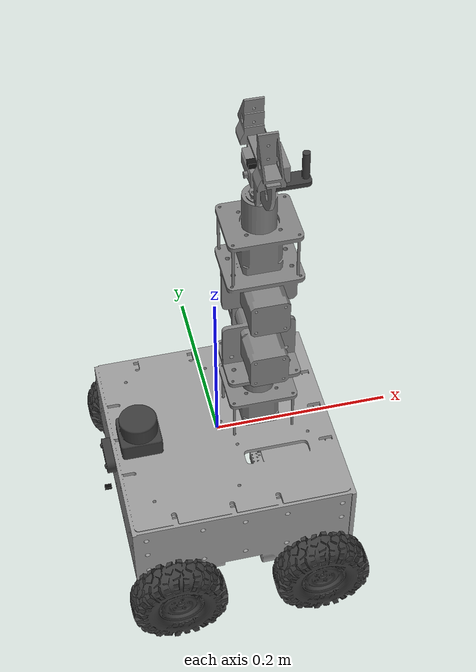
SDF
<sdf version="1.7">
  <model name="mobile_arm_robot">
    <link name="base_link">
      <inertial>
        <pose>0.014618 0.005486 0.023313 0 -0 0</pose>
        <mass>2.66836</mass>
        <inertia>
          <ixx>0.0420107</ixx>
          <ixy>-0.000458565</ixy>
          <ixz>-0.00621837</ixz>
          <iyy>0.0433674</iyy>
          <iyz>-0.00205126</iyz>
          <izz>0.0107035</izz>
        </inertia>
      </inertial>
      <collision name="base_link_collision">
        <pose>0 0 0 0 -0 0</pose>
        <geometry>
          <mesh>
            <scale>1 1 1</scale>
            <uri>file:///home/kamel/ros2_ws3_1/src/mobile_arm_robot_description/meshes/base_link.STL</uri>
          </mesh>
        </geometry>
      </collision>
      <collision name="base_link_fixed_joint_lump__arm_base_link_collision_1">
        <pose>0.050712 0.014708 0.002 0 -0 0</pose>
        <geometry>
          <mesh>
            <scale>1 1 1</scale>
            <uri>file:///home/kamel/ros2_ws3_1/src/mobile_arm_robot_description/meshes/arm_base_link.STL</uri>
          </mesh>
        </geometry>
      </collision>
      <collision name="base_link_fixed_joint_lump__arm_link_1_collision_2">
        <pose>0.050712 0.014708 0.091 0 -0 3.14159</pose>
        <geometry>
          <mesh>
            <scale>1 1 1</scale>
            <uri>file:///home/kamel/ros2_ws3_1/src/mobile_arm_robot_description/meshes/arm_link_1.STL</uri>
          </mesh>
        </geometry>
      </collision>
      <collision name="base_link_fixed_joint_lump__arm_link_2_collision_3">
        <pose>0.050712 0.050458 0.127193 0 -0 3.14159</pose>
        <geometry>
          <mesh>
            <scale>1 1 1</scale>
            <uri>file:///home/kamel/ros2_ws3_1/src/mobile_arm_robot_description/meshes/arm_link_2.STL</uri>
          </mesh>
        </geometry>
      </collision>
      <collision name="base_link_fixed_joint_lump__arm_link_3_collision_4">
        <pose>0.050712 0.050458 0.206517 0 -0 3.14159</pose>
        <geometry>
          <mesh>
            <scale>1 1 1</scale>
            <uri>file:///home/kamel/ros2_ws3_1/src/mobile_arm_robot_description/meshes/arm_link_3.STL</uri>
          </mesh>
        </geometry>
      </collision>
      <collision name="base_link_fixed_joint_lump__arm_link_4_collision_5">
        <pose>0.050712 0.014808 0.332717 0 -0 3.14159</pose>
        <geometry>
          <mesh>
            <scale>1 1 1</scale>
            <uri>file:///home/kamel/ros2_ws3_1/src/mobile_arm_robot_description/meshes/arm_link_4.STL</uri>
          </mesh>
        </geometry>
      </collision>
      <collision name="base_link_fixed_joint_lump__arm_camera_link_collision_6">
        <pose>0.097212 0.014808 0.375217 0 0 -0</pose>
        <geometry>
          <mesh>
            <scale>1 1 1</scale>
            <uri>file:///home/kamel/ros2_ws3_1/src/mobile_arm_robot_description/meshes/arm_camera_link.STL</uri>
          </mesh>
        </geometry>
      </collision>
      <collision name="base_link_fixed_joint_lump__left_gripper_link_collision_7">
        <pose>0.051212 0.039808 0.407717 0 -0 3.14159</pose>
        <geometry>
          <mesh>
            <scale>1 1 1</scale>
            <uri>file:///home/kamel/ros2_ws3_1/src/mobile_arm_robot_description/meshes/left_gripper_link.STL</uri>
          </mesh>
        </geometry>
      </collision>
      <collision name="base_link_fixed_joint_lump__right_gripper_link_collision_8">
        <pose>0.051212 -0.010192 0.407717 0 -0 3.14159</pose>
        <geometry>
          <mesh>
            <scale>1 1 1</scale>
            <uri>file:///home/kamel/ros2_ws3_1/src/mobile_arm_robot_description/meshes/right_gripper_link.STL</uri>
          </mesh>
        </geometry>
      </collision>
      <collision name="base_link_fixed_joint_lump__lidar_link_collision_9">
        <pose>-0.090862 0.001797 0.04 0 -0 0</pose>
        <geometry>
          <mesh>
            <scale>1 1 1</scale>
            <uri>file:///home/kamel/ros2_ws3_1/src/mobile_arm_robot_description/meshes/lidar_link.STL</uri>
          </mesh>
        </geometry>
      </collision>
      <collision name="base_link_fixed_joint_lump__robot_camera_link_collision_10">
        <pose>-0.133238 0.001833 -0.016013 0 -0 0</pose>
        <geometry>
          <mesh>
            <scale>1 1 1</scale>
            <uri>file:///home/kamel/ros2_ws3_1/src/mobile_arm_robot_description/meshes/robot_camera_link.STL</uri>
          </mesh>
        </geometry>
      </collision>
      <visual name="base_link_visual">
        <pose>0 0 0 0 -0 0</pose>
        <geometry>
          <mesh>
            <scale>1 1 1</scale>
            <uri>file:///home/kamel/ros2_ws3_1/src/mobile_arm_robot_description/meshes/base_link.STL</uri>
          </mesh>
        </geometry>
        <material>
          <ambient>0.6 0.6 0.6 1</ambient>
          <diffuse>0.6 0.6 0.6 1</diffuse>
          <specular>0.1 0.1 0.1 1</specular>
        </material>
      </visual>
      <visual name="base_link_fixed_joint_lump__arm_base_link_visual_1">
        <pose>0.050712 0.014708 0.002 0 -0 0</pose>
        <geometry>
          <mesh>
            <scale>1 1 1</scale>
            <uri>file:///home/kamel/ros2_ws3_1/src/mobile_arm_robot_description/meshes/arm_base_link.STL</uri>
          </mesh>
        </geometry>
        <material>
          <ambient>0.502 0.502 0.502 1</ambient>
          <diffuse>0.502 0.502 0.502 1</diffuse>
          <specular>0.1 0.1 0.1 1</specular>
        </material>
      </visual>
      <visual name="base_link_fixed_joint_lump__arm_link_1_visual_2">
        <pose>0.050712 0.014708 0.091 0 -0 3.14159</pose>
        <geometry>
          <mesh>
            <scale>1 1 1</scale>
            <uri>file:///home/kamel/ros2_ws3_1/src/mobile_arm_robot_description/meshes/arm_link_1.STL</uri>
          </mesh>
        </geometry>
        <material>
          <ambient>0.502 0.502 0.502 1</ambient>
          <diffuse>0.502 0.502 0.502 1</diffuse>
          <specular>0.1 0.1 0.1 1</specular>
        </material>
      </visual>
      <visual name="base_link_fixed_joint_lump__arm_link_2_visual_3">
        <pose>0.050712 0.050458 0.127193 0 -0 3.14159</pose>
        <geometry>
          <mesh>
            <scale>1 1 1</scale>
            <uri>file:///home/kamel/ros2_ws3_1/src/mobile_arm_robot_description/meshes/arm_link_2.STL</uri>
          </mesh>
        </geometry>
        <material>
          <ambient>0.502 0.502 0.502 1</ambient>
          <diffuse>0.502 0.502 0.502 1</diffuse>
          <specular>0.1 0.1 0.1 1</specular>
        </material>
      </visual>
      <visual name="base_link_fixed_joint_lump__arm_link_3_visual_4">
        <pose>0.050712 0.050458 0.206517 0 -0 3.14159</pose>
        <geometry>
          <mesh>
            <scale>1 1 1</scale>
            <uri>file:///home/kamel/ros2_ws3_1/src/mobile_arm_robot_description/meshes/arm_link_3.STL</uri>
          </mesh>
        </geometry>
        <material>
          <ambient>0.502 0.502 0.502 1</ambient>
          <diffuse>0.502 0.502 0.502 1</diffuse>
          <specular>0.1 0.1 0.1 1</specular>
        </material>
      </visual>
      <visual name="base_link_fixed_joint_lump__arm_link_4_visual_5">
        <pose>0.050712 0.014808 0.332717 0 -0 3.14159</pose>
        <geometry>
          <mesh>
            <scale>1 1 1</scale>
            <uri>file:///home/kamel/ros2_ws3_1/src/mobile_arm_robot_description/meshes/arm_link_4.STL</uri>
          </mesh>
        </geometry>
        <material>
          <ambient>0.502 0.502 0.502 1</ambient>
          <diffuse>0.502 0.502 0.502 1</diffuse>
          <specular>0.1 0.1 0.1 1</specular>
        </material>
      </visual>
      <visual name="base_link_fixed_joint_lump__arm_camera_link_visual_6">
        <pose>0.097212 0.014808 0.375217 0 0 -0</pose>
        <geometry>
          <mesh>
            <scale>1 1 1</scale>
            <uri>file:///home/kamel/ros2_ws3_1/src/mobile_arm_robot_description/meshes/arm_camera_link.STL</uri>
          </mesh>
        </geometry>
        <material>
          <ambient>0.231 0.231 0.231 1</ambient>
          <diffuse>0.231 0.231 0.231 1</diffuse>
          <specular>0.1 0.1 0.1 1</specular>
        </material>
      </visual>
      <visual name="base_link_fixed_joint_lump__left_gripper_link_visual_7">
        <pose>0.051212 0.039808 0.407717 0 -0 3.14159</pose>
        <geometry>
          <mesh>
            <scale>1 1 1</scale>
            <uri>file:///home/kamel/ros2_ws3_1/src/mobile_arm_robot_description/meshes/left_gripper_link.STL</uri>
          </mesh>
        </geometry>
        <material>
          <ambient>0.502 0.502 0.502 1</ambient>
          <diffuse>0.502 0.502 0.502 1</diffuse>
          <specular>0.1 0.1 0.1 1</specular>
        </material>
      </visual>
      <visual name="base_link_fixed_joint_lump__right_gripper_link_visual_8">
        <pose>0.051212 -0.010192 0.407717 0 -0 3.14159</pose>
        <geometry>
          <mesh>
            <scale>1 1 1</scale>
            <uri>file:///home/kamel/ros2_ws3_1/src/mobile_arm_robot_description/meshes/right_gripper_link.STL</uri>
          </mesh>
        </geometry>
        <material>
          <ambient>0.502 0.502 0.502 1</ambient>
          <diffuse>0.502 0.502 0.502 1</diffuse>
          <specular>0.1 0.1 0.1 1</specular>
        </material>
      </visual>
      <visual name="base_link_fixed_joint_lump__lidar_link_visual_9">
        <pose>-0.090862 0.001797 0.04 0 -0 0</pose>
        <geometry>
          <mesh>
            <scale>1 1 1</scale>
            <uri>file:///home/kamel/ros2_ws3_1/src/mobile_arm_robot_description/meshes/lidar_link.STL</uri>
          </mesh>
        </geometry>
        <material>
          <ambient>0.231 0.231 0.231 1</ambient>
          <diffuse>0.231 0.231 0.231 1</diffuse>
          <specular>0.1 0.1 0.1 1</specular>
        </material>
      </visual>
      <visual name="base_link_fixed_joint_lump__robot_camera_link_visual_10">
        <pose>-0.133238 0.001833 -0.016013 0 -0 0</pose>
        <geometry>
          <mesh>
            <scale>1 1 1</scale>
            <uri>file:///home/kamel/ros2_ws3_1/src/mobile_arm_robot_description/meshes/robot_camera_link.STL</uri>
          </mesh>
        </geometry>
        <material>
          <ambient>0.231 0.231 0.231 1</ambient>
          <diffuse>0.231 0.231 0.231 1</diffuse>
          <specular>0.1 0.1 0.1 1</specular>
        </material>
      </visual>

      <!-- Small distance sensor mounted near the top of the fixed arm -->
      <visual name="arm_front_distance_sensor_visual">
        <pose>0.045 0.014808 0.372 0 0 3.14159</pose>

        <geometry>
          <box>
            <size>0.014 0.008 0.006</size>
          </box>
        </geometry>

        <material>
          <ambient>0.05 0.05 0.05 1</ambient>
          <diffuse>0.08 0.08 0.08 1</diffuse>
          <specular>0.02 0.02 0.02 1</specular>
        </material>
      </visual>

      <!-- Narrow ray sensor: behaves like a small ToF / proximity sensor -->
      <sensor name="arm_front_distance_sensor" type="gpu_lidar">
        <pose>0.045 0.014808 0.372 0 0 3.14159</pose>

        <always_on>true</always_on>
        <visualize>true</visualize>
        <update_rate>15</update_rate>

        <topic>/arm_front_lidar</topic>

        <ray>
          <scan>
            <horizontal>
              <samples>181</samples>
              <resolution>1</resolution>

              <!-- About 14 degrees total field of view -->
              <min_angle>-1.5708</min_angle>
              <max_angle>1.5708</max_angle>
            </horizontal>
          </scan>

          <range>
            <min>0.05</min>
            <max>2.00</max>
            <resolution>0.005</resolution>
          </range>

          <noise>
            <type>gaussian</type>
            <mean>0.0</mean>
            <stddev>0.002</stddev>
          </noise>
        </ray>
      </sensor>

      <!-- Tiny lower front sensor, mounted under the robot camera -->
            <!-- Small visible mount connecting the lower sensor to the robot body -->

<visual name="lower_front_distance_sensor_visual">
        <!-- Same X/Y as robot camera, but lower -->
        <pose>-0.133238 0.001833 -0.075 0 0 3.14159</pose>

        <geometry>
          <box>
            <!-- 8 x 6 x 3 mm -->
            <size>0.008 0.006 0.003</size>
          </box>
        </geometry>

        <material>
          <ambient>0.02 0.02 0.02 1</ambient>
          <diffuse>0.03 0.03 0.03 1</diffuse>
          <specular>0.01 0.01 0.01 1</specular>
        </material>
      </visual>

      <!-- Low obstacle detector -->
      <sensor name="lower_front_distance_sensor" type="gpu_lidar">
        <!-- yaw=pi: look toward the real robot front, negative X -->
        <pose>-0.133238 0.001833 -0.075 0 0 3.14159</pose>

        <always_on>true</always_on>
        <visualize>false</visualize>
        <update_rate>20</update_rate>

        <topic>/lower_front_lidar</topic>

        <ray>
          <scan>
            <horizontal>
              <samples>121</samples>
              <resolution>1</resolution>

              <!-- 120 degree field of view -->
              <min_angle>-1.0472</min_angle>
              <max_angle>1.0472</max_angle>
            </horizontal>
          </scan>

          <range>
            <min>0.04</min>
            <max>1.50</max>
            <resolution>0.005</resolution>
          </range>

          <noise>
            <type>gaussian</type>
            <mean>0.0</mean>
            <stddev>0.002</stddev>
          </noise>
        </ray>
      </sensor>

      <sensor name="lidar_sensor" type="gpu_lidar">
        <pose>-0.0908615203408174 0.00179684818200293 0.04 0 0 0</pose>
        <always_on>true</always_on>
        <visualize>false</visualize>
        <update_rate>10</update_rate>
        <topic>/lidar</topic>
        <ray>
          <scan>
            <horizontal>
              <samples>360</samples>
              <resolution>1</resolution>
              <min_angle>-3.14159</min_angle>
              <max_angle>3.14159</max_angle>
            </horizontal>
          </scan>
          <range>
            <min>0.20</min>
            <max>8.0</max>
            <resolution>0.01</resolution>
          </range>
          <noise>
            <type>gaussian</type>
            <mean>0.0</mean>
            <stddev>0.01</stddev>
          </noise>
        </ray>
      </sensor>

      <sensor name="robot_camera_sensor" type="camera">
        <pose>-0.133237695032014 0.00183257540465381 -0.0160127626540696 0 0 3.14159</pose>
        <always_on>true</always_on>
        <visualize>false</visualize>
        <update_rate>30</update_rate>
        <topic>/robot_camera/image</topic>
        <camera>
          <horizontal_fov>1.047</horizontal_fov>
          <image>
            <width>640</width>
            <height>480</height>
            <format>R8G8B8</format>
          </image>
          <clip>
            <near>0.05</near>
            <far>20.0</far>
          </clip>
        </camera>
      </sensor>

</link>
    <joint name="front_left_wheel_joint" type="revolute">
      <pose relative_to="base_link">0.086714 0.15998 -0.1041 0 -0 0</pose>
      <parent>base_link</parent>
      <child>front_left_wheel_link</child>
      <axis>
        <xyz>0 1 0</xyz>
        <limit>
          <lower>-1e+16</lower>
          <upper>1e+16</upper>
        </limit>
        <dynamics>
          <spring_reference>0</spring_reference>
          <spring_stiffness>0</spring_stiffness>
        </dynamics>
      </axis>
    </joint>
    <link name="front_left_wheel_link">
      <pose relative_to="front_left_wheel_joint">0 0 0 0 -0 0</pose>
      <inertial>
        <pose>0 -0.007684 -6.1e-05 0 -0 0</pose>
        <mass>0.0711334</mass>
        <inertia>
          <ixx>7.86302e-05</ixx>
          <ixy>1.55295e-09</ixy>
          <ixz>7.11242e-10</ixz>
          <iyy>0.000137459</iyy>
          <iyz>6.83774e-10</iyz>
          <izz>7.84461e-05</izz>
        </inertia>
      </inertial>
      <collision name="front_left_wheel_link_collision">
        <pose>0 0 0 0 -0 0</pose>
        <geometry>
          <mesh>
            <scale>1 1 1</scale>
            <uri>file:///home/kamel/ros2_ws3_1/src/mobile_arm_robot_description/meshes/front_left_wheel_link.STL</uri>
          </mesh>
        </geometry>
      </collision>
      <visual name="front_left_wheel_link_visual">
        <pose>0 0 0 0 -0 0</pose>
        <geometry>
          <mesh>
            <scale>1 1 1</scale>
            <uri>file:///home/kamel/ros2_ws3_1/src/mobile_arm_robot_description/meshes/front_left_wheel_link.STL</uri>
          </mesh>
        </geometry>
        <material>
          <ambient>0.231 0.231 0.231 1</ambient>
          <diffuse>0.231 0.231 0.231 1</diffuse>
          <specular>0.1 0.1 0.1 1</specular>
        </material>
      </visual>
    </link>
    <joint name="front_right_wheel_joint" type="revolute">
      <pose relative_to="base_link">0.086714 -0.15822 -0.1061 0 -0 0</pose>
      <parent>base_link</parent>
      <child>front_right_wheel_link</child>
      <axis>
        <xyz>0 1 0</xyz>
        <limit>
          <lower>-1e+16</lower>
          <upper>1e+16</upper>
        </limit>
        <dynamics>
          <spring_reference>0</spring_reference>
          <spring_stiffness>0</spring_stiffness>
        </dynamics>
      </axis>
    </joint>
    <link name="front_right_wheel_link">
      <pose relative_to="front_right_wheel_joint">0 0 0 0 -0 0</pose>
      <inertial>
        <pose>-0 0.007684 -6.1e-05 0 -0 0</pose>
        <mass>0.0711334</mass>
        <inertia>
          <ixx>7.86302e-05</ixx>
          <ixy>1.55276e-09</ixy>
          <ixz>-7.08139e-10</ixz>
          <iyy>0.000137459</iyy>
          <iyz>-6.77565e-10</iyz>
          <izz>7.84461e-05</izz>
        </inertia>
      </inertial>
      <collision name="front_right_wheel_link_collision">
        <pose>0 0 0 0 -0 0</pose>
        <geometry>
          <mesh>
            <scale>1 1 1</scale>
            <uri>file:///home/kamel/ros2_ws3_1/src/mobile_arm_robot_description/meshes/front_right_wheel_link.STL</uri>
          </mesh>
        </geometry>
      </collision>
      <visual name="front_right_wheel_link_visual">
        <pose>0 0 0 0 -0 0</pose>
        <geometry>
          <mesh>
            <scale>1 1 1</scale>
            <uri>file:///home/kamel/ros2_ws3_1/src/mobile_arm_robot_description/meshes/front_right_wheel_link.STL</uri>
          </mesh>
        </geometry>
        <material>
          <ambient>0.231 0.231 0.231 1</ambient>
          <diffuse>0.231 0.231 0.231 1</diffuse>
          <specular>0.1 0.1 0.1 1</specular>
        </material>
      </visual>
    </link>
    <joint name="rear_left_wheel_joint" type="revolute">
      <pose relative_to="base_link">-0.07999 0.15998 -0.1061 0 -0 0</pose>
      <parent>base_link</parent>
      <child>rear_left_wheel_link</child>
      <axis>
        <xyz>0 1 0</xyz>
        <limit>
          <lower>-1e+16</lower>
          <upper>1e+16</upper>
        </limit>
        <dynamics>
          <spring_reference>0</spring_reference>
          <spring_stiffness>0</spring_stiffness>
        </dynamics>
      </axis>
    </joint>
    <link name="rear_left_wheel_link">
      <pose relative_to="rear_left_wheel_joint">0 0 0 0 -0 0</pose>
      <inertial>
        <pose>0 -0.007684 -6.1e-05 0 -0 0</pose>
        <mass>0.0711334</mass>
        <inertia>
          <ixx>7.86302e-05</ixx>
          <ixy>1.55315e-09</ixy>
          <ixz>7.09428e-10</ixz>
          <iyy>0.000137459</iyy>
          <iyz>6.83448e-10</iyz>
          <izz>7.84461e-05</izz>
        </inertia>
      </inertial>
      <collision name="rear_left_wheel_link_collision">
        <pose>0 0 0 0 -0 0</pose>
        <geometry>
          <mesh>
            <scale>1 1 1</scale>
            <uri>file:///home/kamel/ros2_ws3_1/src/mobile_arm_robot_description/meshes/rear_left_wheel_link.STL</uri>
          </mesh>
        </geometry>
      </collision>
      <visual name="rear_left_wheel_link_visual">
        <pose>0 0 0 0 -0 0</pose>
        <geometry>
          <mesh>
            <scale>1 1 1</scale>
            <uri>file:///home/kamel/ros2_ws3_1/src/mobile_arm_robot_description/meshes/rear_left_wheel_link.STL</uri>
          </mesh>
        </geometry>
        <material>
          <ambient>0.231 0.231 0.231 1</ambient>
          <diffuse>0.231 0.231 0.231 1</diffuse>
          <specular>0.1 0.1 0.1 1</specular>
        </material>
      </visual>
    </link>
    <joint name="rear_right_wheel_joint" type="revolute">
      <pose relative_to="base_link">-0.07999 -0.15822 -0.1041 0 -0 0</pose>
      <parent>base_link</parent>
      <child>rear_right_wheel_link</child>
      <axis>
        <xyz>0 1 0</xyz>
        <limit>
          <lower>-1e+16</lower>
          <upper>1e+16</upper>
        </limit>
        <dynamics>
          <spring_reference>0</spring_reference>
          <spring_stiffness>0</spring_stiffness>
        </dynamics>
      </axis>
    </joint>
    <link name="rear_right_wheel_link">
      <pose relative_to="rear_right_wheel_joint">0 0 0 0 -0 0</pose>
      <inertial>
        <pose>-0 0.007684 -6.1e-05 0 -0 0</pose>
        <mass>0.0711334</mass>
        <inertia>
          <ixx>7.86302e-05</ixx>
          <ixy>1.5495e-09</ixy>
          <ixz>-7.24961e-10</ixz>
          <iyy>0.000137459</iyy>
          <iyz>-6.78976e-10</iyz>
          <izz>7.84462e-05</izz>
        </inertia>
      </inertial>
      <collision name="rear_right_wheel_link_collision">
        <pose>0 0 0 0 -0 0</pose>
        <geometry>
          <mesh>
            <scale>1 1 1</scale>
            <uri>file:///home/kamel/ros2_ws3_1/src/mobile_arm_robot_description/meshes/rear_right_wheel_link.STL</uri>
          </mesh>
        </geometry>
      </collision>
      <visual name="rear_right_wheel_link_visual">
        <pose>0 0 0 0 -0 0</pose>
        <geometry>
          <mesh>
            <scale>1 1 1</scale>
            <uri>file:///home/kamel/ros2_ws3_1/src/mobile_arm_robot_description/meshes/rear_right_wheel_link.STL</uri>
          </mesh>
        </geometry>
        <material>
          <ambient>0.231 0.231 0.231 1</ambient>
          <diffuse>0.231 0.231 0.231 1</diffuse>
          <specular>0.1 0.1 0.1 1</specular>
        </material>
      </visual>
    </link>
    <static>0</static>
    <plugin name="ign_ros2_control::IgnitionROS2ControlPlugin" filename="libign_ros2_control-system.so">
      <robot_param>robot_description</robot_param>
      <robot_param_node>robot_state_publisher</robot_param_node>
      <parameters>/home/kamel/ros2_ws3_1/src/mobile_arm_robot_control/config/controllers.yaml</parameters>
    </plugin>
  </model>
</sdf>
